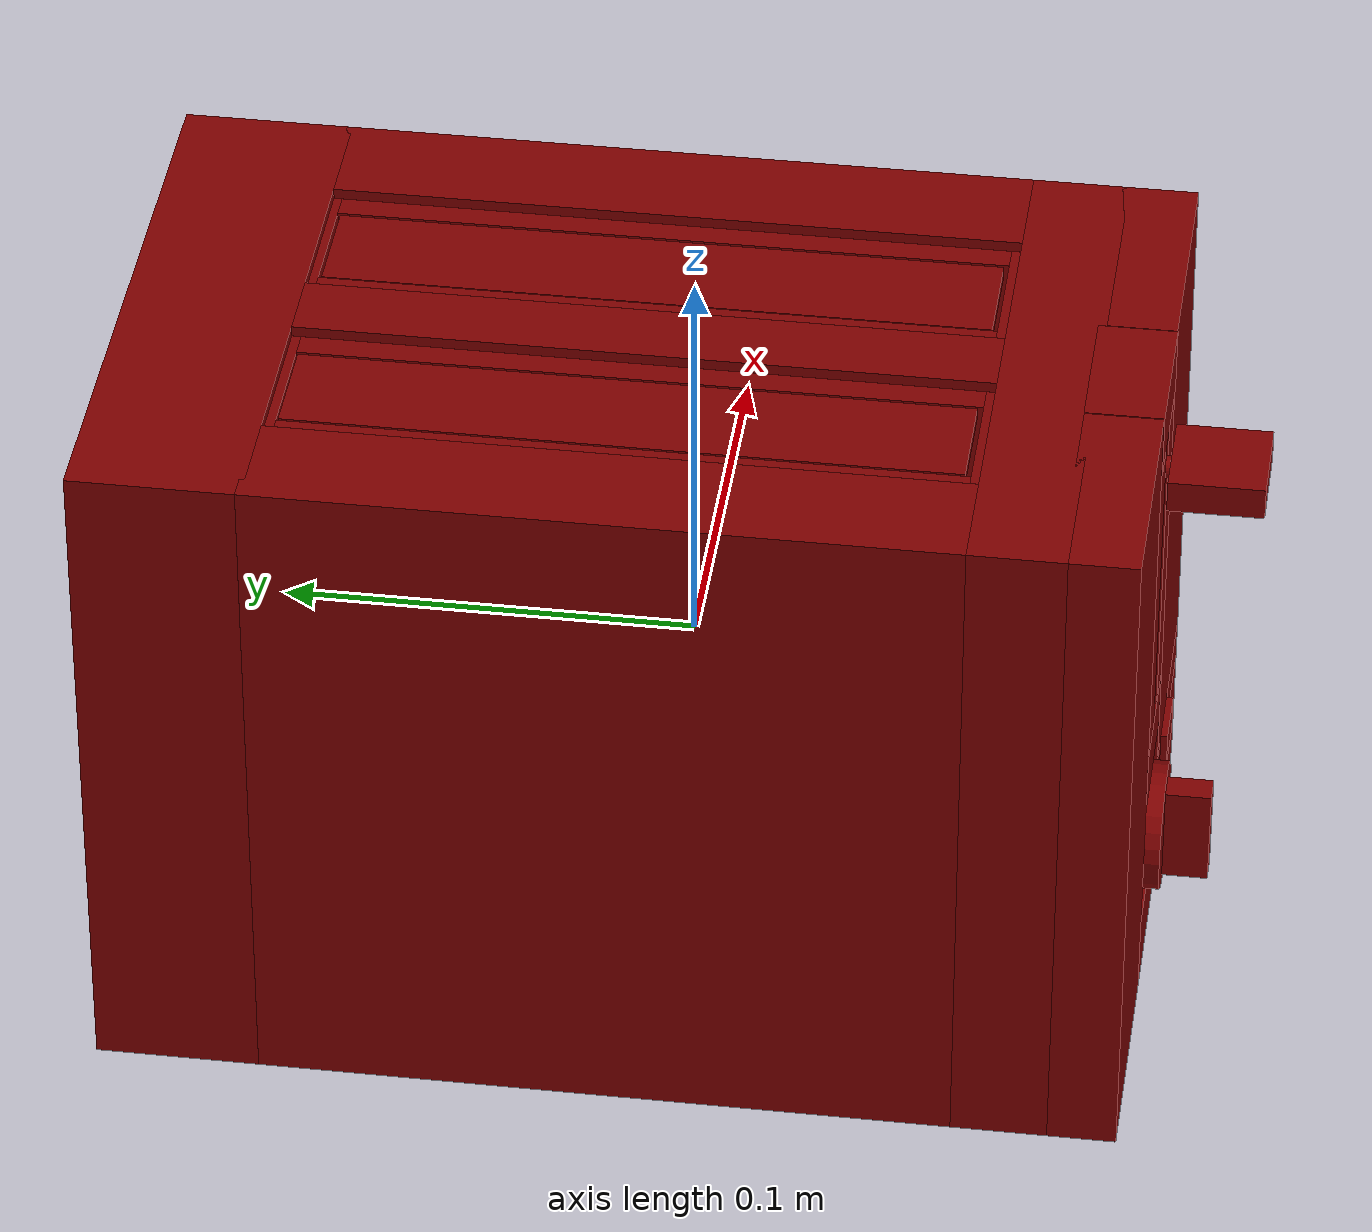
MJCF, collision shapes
<?xml version='1.0' encoding='UTF-8'?>
<mujoco model="model">
  <compiler angle="radian"/>
  <asset>
    <mesh file="visuals/Body001.obj" name="Body001_vis"/>
    <mesh file="visuals/Body002.obj" name="Body002_vis"/>
    <mesh file="visuals/Button001.obj" name="Button001_vis"/>
    <mesh file="visuals/Knob001.obj" name="Knob001_vis"/>
    <mesh file="visuals/Lever001.obj" name="Lever001_vis"/>
    <texture file="visuals/T_BC001.png" name="Body001_material" type="2d"/>
    <material name="Body001_material" rgba="1 1 1 1.0" texture="Body001_material" shininess="0.4472135901451111" specular="1"/>
    <texture file="visuals/T_BC001.png" name="Body002_material" type="2d"/>
    <material name="Body002_material" rgba="1 1 1 1.0" texture="Body002_material" shininess="0.4472135901451111" specular="8"/>
    <texture file="visuals/T_BC001.png" name="Button001_material" type="2d"/>
    <material name="Button001_material" rgba="1 1 1 1.0" texture="Button001_material" shininess="0.4472135901451111" specular="1"/>
    <texture file="visuals/T_BC001.png" name="Knob001_material" type="2d"/>
    <material name="Knob001_material" rgba="1 1 1 1.0" texture="Knob001_material" shininess="0.4472135901451111" specular="1"/>
    <texture file="visuals/T_BC001.png" name="Lever001_material" type="2d"/>
    <material name="Lever001_material" rgba="1 1 1 1.0" texture="Lever001_material" shininess="0.4472135901451111" specular="1"/>
  </asset>
  <default>
    <default class="visual">
      <geom conaffinity="0" contype="0" group="1" type="mesh"/>
    </default>
    <default class="collision">
      <geom group="0" rgba="0.5 0 0 0.5"/>
    </default>
    <default class="spawn">
      <geom group="0" rgba="1 1 1 0.5" contype="0" conaffinity="0"/>
      <site group="0" rgba="1 1 1 0.5"/>
    </default>
    <default class="region">
      <geom group="1" conaffinity="0" contype="0" rgba="0 1 0 0"/>
    </default>
  </default>
  <worldbody>
    <body>
      <body name="object">
        <geom mesh="Body001_vis" type="mesh" solimp="0.998 0.998 0.001" solref="0.001 1" density="100" friction="0.95 0.3 0.1" class="visual" material="Body001_material"/>
        <geom class="collision" type="box" pos="0.0 -0.08355850726366043 0.00014329585246741772" size="0.07590962201356888 0.011601744219660759 0.0854564905166626" quat="1.0 0.0 0.0 0.0"/>
        <geom class="collision" type="box" pos="0.0 0.11496447771787643 0.00014329585246741772" size="0.07590962201356888 0.02050899900496006 0.0854564905166626" quat="1.0 0.0 0.0 0.0"/>
        <geom class="collision" type="box" pos="-0.062275711447000504 0.011359876953065395 0.00014329585246741772" size="0.0136339096352458 0.08439142256975174 0.0854564905166626" quat="1.0 0.0 0.0 0.0"/>
        <geom class="collision" type="box" pos="0.06242747604846954 0.011359875090420246 0.00014329807891044766" size="0.013482140377163887 0.08439142256975174 0.0854564905166626" quat="1.0 0.0 0.0 0.0"/>
        <geom class="collision" type="box" pos="0.0002649548405315727 0.009385848417878151 0.017958590760827065" size="0.00909755565226078 0.0852440744638443 0.06763950735330582" quat="1.0 0.0 0.0 0.0"/>
        <geom class="collision" type="box" pos="-0.04687172546982765 -0.10248053073883057 0.00014329585246741772" size="0.029037898406386375 0.009267042391002178 0.0854564905166626" quat="1.0 0.0 0.0 0.0"/>
        <geom class="collision" type="box" pos="0.04687171056866646 -0.10248052328824997 -0.06981948018074036" size="0.029037898406386375 0.009267040528357029 0.015493716113269329" quat="1.0 0.0 0.0 0.0"/>
        <geom class="collision" type="box" pos="0.04687171056866646 -0.10248053073883057 0.021314207464456558" size="0.029037898406386375 0.009267045184969902 0.06428558379411697" quat="1.0 0.0 0.0 0.0"/>
        <geom class="collision" type="box" pos="1.4134589036984835e-06 -0.10248052328824997 -0.075175441801548" size="0.01782958209514618 0.009267040528357029 0.010137759149074554" quat="1.0 0.0 0.0 0.0"/>
        <geom class="collision" type="box" pos="0.010919854044914246 -0.10248052328824997 0.027177663519978523" size="0.006911141332238913 0.009267040528357029 0.04179152846336365" quat="1.0 0.0 0.0 0.0"/>
        <geom class="collision" type="box" pos="0.06078513339161873 -0.10248052328824997 -0.04866699501872063" size="0.015124478377401829 0.009267040528357029 0.005102216266095638" quat="1.0 0.0 0.0 0.0"/>
        <geom class="collision" type="box" pos="0.022791152819991112 -0.10248052328824997 -0.04866699501872063" size="0.004921319894492626 0.009267040528357029 0.005102216266095638" quat="1.0 0.0 0.0 0.0"/>
        <geom class="collision" type="box" pos="0.0 0.013034986332058907 -0.053380124270915985" size="0.035664040595293045 0.06384525448083878 0.03209454566240311" quat="1.0 0.0 0.0 0.0"/>
        <geom class="collision" type="box" pos="-0.010917026549577713 -0.10248052328824997 0.027177663519978523" size="0.006911141332238913 0.009267040528357029 0.04179152846336365" quat="1.0 0.0 0.0 0.0"/>
        <geom class="collision" type="box" pos="-2.324156230315566e-05 -0.10248052328824997 -0.022717222571372986" size="0.01735745184123516 0.009267040528357029 0.007624846883118153" quat="1.0 0.0 0.0 0.0"/>
        <geom class="collision" type="box" pos="-2.324156230315566e-05 -0.10248052328824997 0.07739904522895813" size="0.017607739195227623 0.00940061453729868 0.008267182856798172" quat="1.0 0.0 0.0 0.0"/>
        <geom class="collision" type="box" pos="-0.0009863361483439803 0.007288589142262936 -0.07989518344402313" size="0.054972484707832336 0.09314289689064026 0.005579482298344374" quat="1.0 0.0 0.0 0.0"/>
        <body name="Body002">
          <geom mesh="Body002_vis" type="mesh" solimp="0.998 0.998 0.001" solref="0.001 1" density="100" friction="0.95 0.3 0.1" class="visual" material="Body002_material"/>
          <geom class="collision" type="box" pos="0.046386364847421646 0.011478343978524208 0.03046848066151142" size="0.003607747843489051 0.08354093134403229 0.05253378674387932" quat="1.0 0.0 0.0 0.0"/>
          <geom class="collision" type="box" pos="0.012085113674402237 0.011125605553388596 0.03046848066151142" size="0.0036077522672712803 0.08350355178117752 0.05253385752439499" quat="1.0 0.0 0.0 0.0"/>
          <geom class="collision" type="box" pos="0.031237764284014702 0.09483721107244492 0.030468476936221123" size="0.018853915855288506 0.002383204409852624 0.05253579467535019" quat="1.0 0.0 0.0 0.0"/>
          <geom class="collision" type="box" pos="0.029682224616408348 -0.0719263032078743 0.030468475073575974" size="0.020909428596496582 0.002383196260780096 0.052535757422447205" quat="1.0 0.0 0.0 0.0"/>
          <geom class="collision" type="box" pos="-0.011614297516644001 0.010229825973510742 0.03046848066151142" size="0.003567766398191452 0.08360325545072556 0.052534058690071106" quat="1.0 0.0 0.0 0.0"/>
          <geom class="collision" type="box" pos="-0.028882237151265144 -0.07199908047914505 0.030468478798866272" size="0.02016499452292919 0.002383196260780096 0.05253569781780243" quat="1.0 0.0 0.0 0.0"/>
          <geom class="collision" type="box" pos="-0.028600919991731644 0.0946049615740776 0.030468476936221123" size="0.020344994962215424 0.002383204409852624 0.052535660564899445" quat="1.0 0.0 0.0 0.0"/>
          <geom class="collision" type="box" pos="-0.046125058084726334 0.010627953335642815 0.03046848066151142" size="0.0036077790427953005 0.08320532739162445 0.05253426358103752" quat="1.0 0.0 0.0 0.0"/>
        </body>
        <body name="Button001">
          <joint axis="0.0 1.0 0.0" pos="0.03652457892894745 -0.11115895211696625 -0.048640720546245575" limited="true" name="Button001_joint" range="0.0 0.002" type="slide" damping="1" frictionloss="1" armature=".01" stiffness="0.05"/>
          <geom mesh="Button001_vis" type="mesh" solimp="0.998 0.998 0.001" solref="0.001 1" density="100" friction="0.95 0.3 0.1" class="visual" material="Button001_material"/>
          <geom class="collision" type="box" pos="0.03662022575736046 -0.11036890000104904 -0.04858493059873581" size="0.007770675700157881 0.0029788196552544832 0.004665102809667587" quat="1.0 0.0 0.0 0.0"/>
        </body>
        <body name="Knob001">
          <joint axis="0.0 1.0 0.0" pos="-4.213220745441504e-05 -0.11689643561840057 -0.048530302941799164" limited="true" name="Knob001_joint" range="-0.8726646259971648 3.9269908169872414" type="hinge" damping="0.05" armature="0.001"/>
          <geom mesh="Knob001_vis" type="mesh" solimp="0.998 0.998 0.001" solref="0.001 1" density="100" friction="0.95 0.3 0.1" class="visual" material="Knob001_material"/>
          <geom class="collision" type="cylinder" pos="0.0 -0.11265130341053009 -0.048515576869249344" size="0.015766290947794914 0.0027221275959163904" quat="0.7071068286895752 0.7071067690849304 0.0 0.0"/>
          <geom class="collision" type="box" pos="-9.152884013019502e-05 -0.12067829817533493 -0.04869455099105835" size="0.003526638727635145 0.005828576628118753 0.012448814697563648" quat="1.0 0.0 0.0 0.0"/>
        </body>
        <body name="Lever001">
          <joint axis="0.0 0.0 -1.0" pos="2.175047342234393e-08 -0.11984113603830338 0.05903462693095207" limited="true" name="Lever001_joint" range="0.0 0.07" type="slide" damping="1" frictionloss="1" armature=".01" stiffness="1" springref="-0.5"/>
          <geom mesh="Lever001_vis" type="mesh" solimp="0.998 0.998 0.001" solref="0.001 1" density="100" friction="0.95 0.3 0.1" class="visual" material="Lever001_material"/>
          <geom class="collision" type="box" pos="0.02899954468011856 0.011697005480527878 0.0814853385090828" size="0.012999999336898327 0.08000054210424423 0.001518328906968236" quat="1.0 0.0 0.0 0.0" name="slotL_floor"/>
          <geom class="collision" type="box" pos="-0.028914710506796837 0.011800010688602924 0.0814853385090828" size="0.01299993135035038 0.079999640583992 0.0015183063223958015" quat="1.0 0.0 0.0 0.0" name="slotR_floor"/>
          <geom class="collision" type="box" pos="0.0 -0.12437976896762848 0.05912139266729355" size="0.011801991611719131 0.011492894031107426 0.004025919828563929" quat="1.0 0.0 0.0 0.0" name="lever_knob"/>
          <geom class="collision" type="cylinder" pos="-8.201376383576431e-11 -0.10804589092731476 0.05905692279338837" size="0.002710117259994149 0.00466515589505434" quat="0.7071068286895752 0.7071067690849304 0.0 0.0"/>
        </body>
        <geom class="region" name="reg_main" type="box" pos="1.862645149230957e-09 0.011897675693035126 0.0" size="0.07586037367582321 0.1235480085015297 0.08556220680475235"/>
      </body>
    </body>
  </worldbody>
  <actuator>
    <motor name="Button001_joint_actuator" joint="Button001_joint" gear="0.25"/>
    <motor name="Knob001_joint_actuator" joint="Knob001_joint" gear="10"/>
    <motor name="Lever001_joint_actuator" joint="Lever001_joint" gear="2"/>
  </actuator>
</mujoco>
